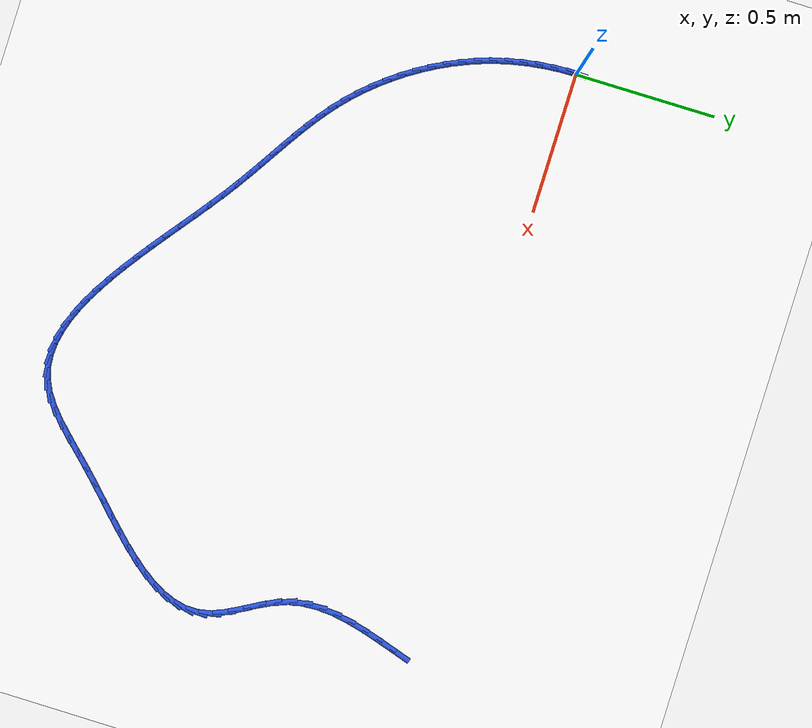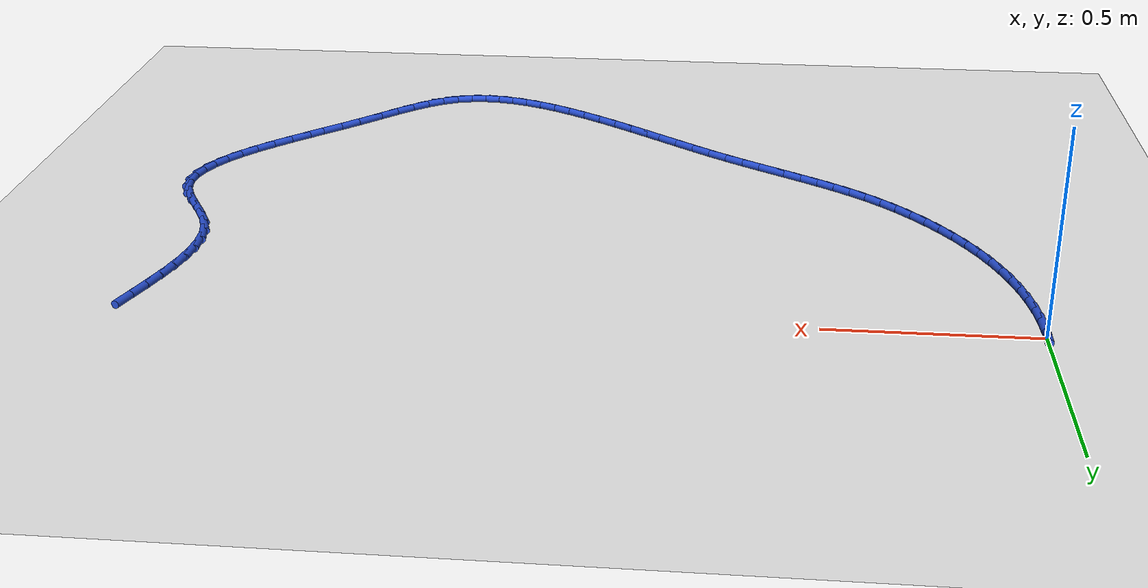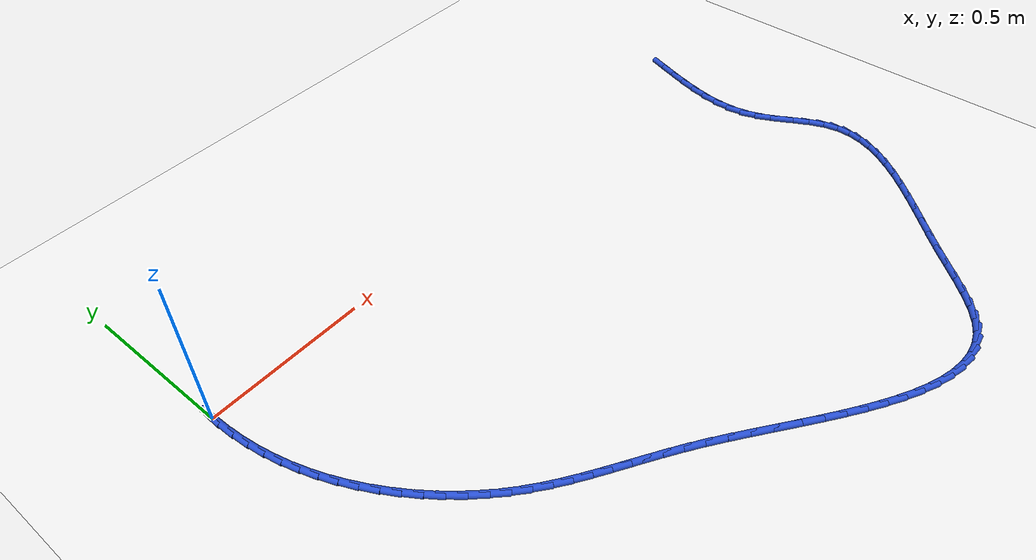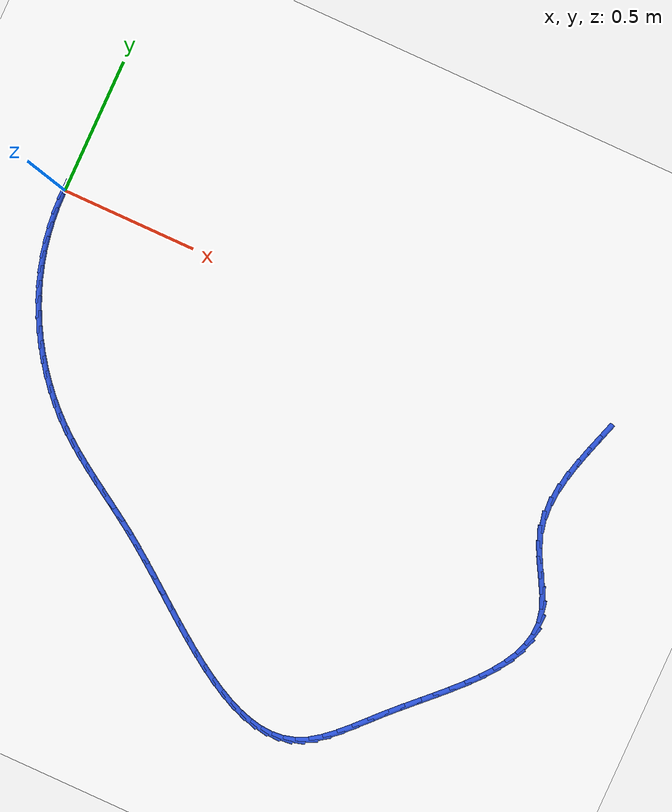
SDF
<sdf version="1.6">
 <world name="default">
  <model name="ground_plane">
   <static>1</static>
   <link name="link">
    <collision name="collision">
     <geometry><plane><normal>0 0 1</normal><size>100 100</size></plane></geometry>
     <surface><friction><ode><mu>100</mu><mu2>50</mu2></ode></friction></surface>
    </collision>
    <visual name="visual">
     <cast_shadows>0</cast_shadows>
     <geometry><plane><normal>0 0 1</normal><size>100 100</size></plane></geometry>
     <material>
      <script><uri>file://media/materials/scripts/gazebo.material</uri><name>Gazebo/WhiteGlow</name></script>
     </material>
    </visual>
   </link>
  </model>
  <model name="line">
   <link name="link_0">
    <pose>2.949029909160572e-17 -4.163336342344337e-17 0.01 0 1.57 1.544740672575645</pose>
    <collision name="collision">
     <geometry><cylinder><radius>0.01</radius><length>0.08</length></cylinder></geometry>
    </collision>
    <visual name="visual">
     <material>
      <script><name>Gazebo/Blue</name><uri>file://media/materials/scripts/gazebo.material</uri></script>
     </material>
     <geometry><cylinder><radius>0.01</radius><length>0.08</length></cylinder></geometry>
    </visual>
   </link>
   <link name="link_76">
    <pose>2.096826235157893 0.011627225582107145 0.01 0 1.57 1.2632644213254685</pose>
    <collision name="collision">
     <geometry><cylinder><radius>0.01</radius><length>0.08</length></cylinder></geometry>
    </collision>
    <visual name="visual">
     <material>
      <script><name>Gazebo/Blue</name><uri>file://media/materials/scripts/gazebo.material</uri></script>
     </material>
     <geometry><cylinder><radius>0.01</radius><length>0.08</length></cylinder></geometry>
    </visual>
   </link>
   <link name="link_77">
    <pose>2.079566126609295 -0.0427167834120716 0.01 0 1.57 1.2718921500244282</pose>
    <collision name="collision">
     <geometry><cylinder><radius>0.01</radius><length>0.08</length></cylinder></geometry>
    </collision>
    <visual name="visual">
     <material>
      <script><name>Gazebo/Blue</name><uri>file://media/materials/scripts/gazebo.material</uri></script>
     </material>
     <geometry><cylinder><radius>0.01</radius><length>0.08</length></cylinder></geometry>
    </visual>
   </link>
   <link name="link_78">
    <pose>2.062771534069714 -0.09722061912857322 0.01 0 1.57 1.299983507390627</pose>
    <collision name="collision">
     <geometry><cylinder><radius>0.01</radius><length>0.08</length></cylinder></geometry>
    </collision>
    <visual name="visual">
     <material>
      <script><name>Gazebo/Blue</name><uri>file://media/materials/scripts/gazebo.material</uri></script>
     </material>
     <geometry><cylinder><radius>0.01</radius><length>0.08</length></cylinder></geometry>
    </visual>
   </link>
   <link name="link_79">
    <pose>2.047652586593815 -0.15167713233504038 0.01 0 1.57 1.3488197064102432</pose>
    <collision name="collision">
     <geometry><cylinder><radius>0.01</radius><length>0.08</length></cylinder></geometry>
    </collision>
    <visual name="visual">
     <material>
      <script><name>Gazebo/Blue</name><uri>file://media/materials/scripts/gazebo.material</uri></script>
     </material>
     <geometry><cylinder><radius>0.01</radius><length>0.08</length></cylinder></geometry>
    </visual>
   </link>
   <link name="link_80">
    <pose>2.0354194132362644 -0.2058791737991122 0.01 0 1.57 1.4205198133109653</pose>
    <collision name="collision">
     <geometry><cylinder><radius>0.01</radius><length>0.08</length></cylinder></geometry>
    </collision>
    <visual name="visual">
     <material>
      <script><name>Gazebo/Blue</name><uri>file://media/materials/scripts/gazebo.material</uri></script>
     </material>
     <geometry><cylinder><radius>0.01</radius><length>0.08</length></cylinder></geometry>
    </visual>
   </link>
   <link name="link_81">
    <pose>2.0272821430517283 -0.2596195942884313 0.01 0 1.57 1.517499384583761</pose>
    <collision name="collision">
     <geometry><cylinder><radius>0.01</radius><length>0.08</length></cylinder></geometry>
    </collision>
    <visual name="visual">
     <material>
      <script><name>Gazebo/Blue</name><uri>file://media/materials/scripts/gazebo.material</uri></script>
     </material>
     <geometry><cylinder><radius>0.01</radius><length>0.08</length></cylinder></geometry>
    </visual>
   </link>
   <link name="link_82">
    <pose>2.0244509050948722 -0.31269124457063774 0.01 0 1.57 -1.5003150920802395</pose>
    <collision name="collision">
     <geometry><cylinder><radius>0.01</radius><length>0.08</length></cylinder></geometry>
    </collision>
    <visual name="visual">
     <material>
      <script><name>Gazebo/Blue</name><uri>file://media/materials/scripts/gazebo.material</uri></script>
     </material>
     <geometry><cylinder><radius>0.01</radius><length>0.08</length></cylinder></geometry>
    </visual>
   </link>
   <link name="link_83">
    <pose>2.0281358284203623 -0.3648869754133713 0.01 0 1.57 -1.3511423713404072</pose>
    <collision name="collision">
     <geometry><cylinder><radius>0.01</radius><length>0.08</length></cylinder></geometry>
    </collision>
    <visual name="visual">
     <material>
      <script><name>Gazebo/Blue</name><uri>file://media/materials/scripts/gazebo.material</uri></script>
     </material>
     <geometry><cylinder><radius>0.01</radius><length>0.08</length></cylinder></geometry>
    </visual>
   </link>
   <link name="link_84">
    <pose>2.0395470420828645 -0.41599963758427483 0.01 0 1.57 -1.1935699691708919</pose>
    <collision name="collision">
     <geometry><cylinder><radius>0.01</radius><length>0.08</length></cylinder></geometry>
    </collision>
    <visual name="visual">
     <material>
      <script><name>Gazebo/Blue</name><uri>file://media/materials/scripts/gazebo.material</uri></script>
     </material>
     <geometry><cylinder><radius>0.01</radius><length>0.08</length></cylinder></geometry>
    </visual>
   </link>
   <link name="link_85">
    <pose>2.059304239576534 -0.4658663464523599 0.01 0 1.57 -1.090651678037014</pose>
    <collision name="collision">
     <geometry><cylinder><radius>0.01</radius><length>0.08</length></cylinder></geometry>
    </collision>
    <visual name="visual">
     <material>
      <script><name>Gazebo/Blue</name><uri>file://media/materials/scripts/gazebo.material</uri></script>
     </material>
     <geometry><cylinder><radius>0.01</radius><length>0.08</length></cylinder></geometry>
    </visual>
   </link>
   <link name="link_86">
    <pose>2.084671844546415 -0.5145757599635162 0.01 0 1.57 -1.0550559214420145</pose>
    <collision name="collision">
     <geometry><cylinder><radius>0.01</radius><length>0.08</length></cylinder></geometry>
    </collision>
    <visual name="visual">
     <material>
      <script><name>Gazebo/Blue</name><uri>file://media/materials/scripts/gazebo.material</uri></script>
     </material>
     <geometry><cylinder><radius>0.01</radius><length>0.08</length></cylinder></geometry>
    </visual>
   </link>
   <link name="link_87">
    <pose>2.111730638689737 -0.5623052729936062 0.01 0 1.57 -1.0841357682479205</pose>
    <collision name="collision">
     <geometry><cylinder><radius>0.01</radius><length>0.08</length></cylinder></geometry>
    </collision>
    <visual name="visual">
     <material>
      <script><name>Gazebo/Blue</name><uri>file://media/materials/scripts/gazebo.material</uri></script>
     </material>
     <geometry><cylinder><radius>0.01</radius><length>0.08</length></cylinder></geometry>
    </visual>
   </link>
   <link name="link_88">
    <pose>2.136560064068666 -0.6092323808501332 0.01 0 1.57 -1.187340215090316</pose>
    <collision name="collision">
     <geometry><cylinder><radius>0.01</radius><length>0.08</length></cylinder></geometry>
    </collision>
    <visual name="visual">
     <material>
      <script><name>Gazebo/Blue</name><uri>file://media/materials/scripts/gazebo.material</uri></script>
     </material>
     <geometry><cylinder><radius>0.01</radius><length>0.08</length></cylinder></geometry>
    </visual>
   </link>
   <link name="link_89">
    <pose>2.155239562745373 -0.6555345788406024 0.01 0 1.57 -1.3775803240059434</pose>
    <collision name="collision">
     <geometry><cylinder><radius>0.01</radius><length>0.08</length></cylinder></geometry>
    </collision>
    <visual name="visual">
     <material>
      <script><name>Gazebo/Blue</name><uri>file://media/materials/scripts/gazebo.material</uri></script>
     </material>
     <geometry><cylinder><radius>0.01</radius><length>0.08</length></cylinder></geometry>
    </visual>
   </link>
   <link name="link_90">
    <pose>2.164209354869996 -0.7013790836373275 0.01 0 1.57 1.543804242396875</pose>
    <collision name="collision">
     <geometry><cylinder><radius>0.01</radius><length>0.08</length></cylinder></geometry>
    </collision>
    <visual name="visual">
     <material>
      <script><name>Gazebo/Blue</name><uri>file://media/materials/scripts/gazebo.material</uri></script>
     </material>
     <geometry><cylinder><radius>0.01</radius><length>0.08</length></cylinder></geometry>
    </visual>
   </link>
   <link name="link_91">
    <pose>2.1629818210845047 -0.7468455854857358 0.01 0 1.57 1.345138724814262</pose>
    <collision name="collision">
     <geometry><cylinder><radius>0.01</radius><length>0.08</length></cylinder></geometry>
    </collision>
    <visual name="visual">
     <material>
      <script><name>Gazebo/Blue</name><uri>file://media/materials/scripts/gazebo.material</uri></script>
     </material>
     <geometry><cylinder><radius>0.01</radius><length>0.08</length></cylinder></geometry>
    </visual>
   </link>
   <link name="link_92">
    <pose>2.1526228322086887 -0.7919695154055973 0.01 0 1.57 1.1809769895769164</pose>
    <collision name="collision">
     <geometry><cylinder><radius>0.01</radius><length>0.08</length></cylinder></geometry>
    </collision>
    <visual name="visual">
     <material>
      <script><name>Gazebo/Blue</name><uri>file://media/materials/scripts/gazebo.material</uri></script>
     </material>
     <geometry><cylinder><radius>0.01</radius><length>0.08</length></cylinder></geometry>
    </visual>
   </link>
   <link name="link_93">
    <pose>2.134210275553139 -0.8367859620646102 0.01 0 1.57 1.052759528268384</pose>
    <collision name="collision">
     <geometry><cylinder><radius>0.01</radius><length>0.08</length></cylinder></geometry>
    </collision>
    <visual name="visual">
     <material>
      <script><name>Gazebo/Blue</name><uri>file://media/materials/scripts/gazebo.material</uri></script>
     </material>
     <geometry><cylinder><radius>0.01</radius><length>0.08</length></cylinder></geometry>
    </visual>
   </link>
   <link name="link_94">
    <pose>2.1088220384284453 -0.8813300141304751 0.01 0 1.57 0.9559725087020061</pose>
    <collision name="collision">
     <geometry><cylinder><radius>0.01</radius><length>0.08</length></cylinder></geometry>
    </collision>
    <visual name="visual">
     <material>
      <script><name>Gazebo/Blue</name><uri>file://media/materials/scripts/gazebo.material</uri></script>
     </material>
     <geometry><cylinder><radius>0.01</radius><length>0.08</length></cylinder></geometry>
    </visual>
   </link>
   <link name="link_95">
    <pose>2.077536008145197 -0.9256367602708901 0.01 0 1.57 0.884789644434725</pose>
    <collision name="collision">
     <geometry><cylinder><radius>0.01</radius><length>0.08</length></cylinder></geometry>
    </collision>
    <visual name="visual">
     <material>
      <script><name>Gazebo/Blue</name><uri>file://media/materials/scripts/gazebo.material</uri></script>
     </material>
     <geometry><cylinder><radius>0.01</radius><length>0.08</length></cylinder></geometry>
    </visual>
   </link>
   <link name="link_96">
    <pose>2.0414300720139833 -0.9697412891535534 0.01 0 1.57 0.8341680571267941</pose>
    <collision name="collision">
     <geometry><cylinder><radius>0.01</radius><length>0.08</length></cylinder></geometry>
    </collision>
    <visual name="visual">
     <material>
      <script><name>Gazebo/Blue</name><uri>file://media/materials/scripts/gazebo.material</uri></script>
     </material>
     <geometry><cylinder><radius>0.01</radius><length>0.08</length></cylinder></geometry>
    </visual>
   </link>
   <link name="link_97">
    <pose>2.0015821173453943 -1.0136786894461662 0.01 0 1.57 0.8003798127740122</pose>
    <collision name="collision">
     <geometry><cylinder><radius>0.01</radius><length>0.08</length></cylinder></geometry>
    </collision>
    <visual name="visual">
     <material>
      <script><name>Gazebo/Blue</name><uri>file://media/materials/scripts/gazebo.material</uri></script>
     </material>
     <geometry><cylinder><radius>0.01</radius><length>0.08</length></cylinder></geometry>
    </visual>
   </link>
   <link name="link_98">
    <pose>1.9590700314500213 -1.057484049816426 0.01 0 1.57 0.7809575232172341</pose>
    <collision name="collision">
     <geometry><cylinder><radius>0.01</radius><length>0.08</length></cylinder></geometry>
    </collision>
    <visual name="visual">
     <material>
      <script><name>Gazebo/Blue</name><uri>file://media/materials/scripts/gazebo.material</uri></script>
     </material>
     <geometry><cylinder><radius>0.01</radius><length>0.08</length></cylinder></geometry>
    </visual>
   </link>
   <link name="link_99">
    <pose>1.9149717016384515 -1.101192458932033 0.01 0 1.57 0.7745192190437981</pose>
    <collision name="collision">
     <geometry><cylinder><radius>0.01</radius><length>0.08</length></cylinder></geometry>
    </collision>
    <visual name="visual">
     <material>
      <script><name>Gazebo/Blue</name><uri>file://media/materials/scripts/gazebo.material</uri></script>
     </material>
     <geometry><cylinder><radius>0.01</radius><length>0.08</length></cylinder></geometry>
    </visual>
   </link>
   <link name="link_100">
    <pose>1.870365015221276 -1.1448390054606858 0.01 0 1.57 0.7806366464646564</pose>
    <collision name="collision">
     <geometry><cylinder><radius>0.01</radius><length>0.08</length></cylinder></geometry>
    </collision>
    <visual name="visual">
     <material>
      <script><name>Gazebo/Blue</name><uri>file://media/materials/scripts/gazebo.material</uri></script>
     </material>
     <geometry><cylinder><radius>0.01</radius><length>0.08</length></cylinder></geometry>
    </visual>
   </link>
   <link name="link_101">
    <pose>1.826327859509085 -1.188458778070083 0.01 0 1.57 0.7992303116611837</pose>
    <collision name="collision">
     <geometry><cylinder><radius>0.01</radius><length>0.08</length></cylinder></geometry>
    </collision>
    <visual name="visual">
     <material>
      <script><name>Gazebo/Blue</name><uri>file://media/materials/scripts/gazebo.material</uri></script>
     </material>
     <geometry><cylinder><radius>0.01</radius><length>0.08</length></cylinder></geometry>
    </visual>
   </link>
   <link name="link_102">
    <pose>1.7839116803177841 -1.2320649064652056 0.01 0 1.57 0.8147638490405114</pose>
    <collision name="collision">
     <geometry><cylinder><radius>0.01</radius><length>0.08</length></cylinder></geometry>
    </collision>
    <visual name="visual">
     <material>
      <script><name>Gazebo/Blue</name><uri>file://media/materials/scripts/gazebo.material</uri></script>
     </material>
     <geometry><cylinder><radius>0.01</radius><length>0.08</length></cylinder></geometry>
    </visual>
   </link>
   <link name="link_103">
    <pose>1.7433977911850975 -1.2750309458417959 0.01 0 1.57 0.8074954610320693</pose>
    <collision name="collision">
     <geometry><cylinder><radius>0.01</radius><length>0.08</length></cylinder></geometry>
    </collision>
    <visual name="visual">
     <material>
      <script><name>Gazebo/Blue</name><uri>file://media/materials/scripts/gazebo.material</uri></script>
     </material>
     <geometry><cylinder><radius>0.01</radius><length>0.08</length></cylinder></geometry>
    </visual>
   </link>
   <link name="link_104">
    <pose>1.7041949332314612 -1.3160058030574193 0.01 0 1.57 0.7730952417449066</pose>
    <collision name="collision">
     <geometry><cylinder><radius>0.01</radius><length>0.08</length></cylinder></geometry>
    </collision>
    <visual name="visual">
     <material>
      <script><name>Gazebo/Blue</name><uri>file://media/materials/scripts/gazebo.material</uri></script>
     </material>
     <geometry><cylinder><radius>0.01</radius><length>0.08</length></cylinder></geometry>
    </visual>
   </link>
   <link name="link_105">
    <pose>1.6656648178373705 -1.3535993280132055 0.01 0 1.57 0.7060112145952415</pose>
    <collision name="collision">
     <geometry><cylinder><radius>0.01</radius><length>0.08</length></cylinder></geometry>
    </collision>
    <visual name="visual">
     <material>
      <script><name>Gazebo/Blue</name><uri>file://media/materials/scripts/gazebo.material</uri></script>
     </material>
     <geometry><cylinder><radius>0.01</radius><length>0.08</length></cylinder></geometry>
    </visual>
   </link>
   <link name="link_106">
    <pose>1.6271691563833248 -1.3864213706102806 0.01 0 1.57 0.5984479238805186</pose>
    <collision name="collision">
     <geometry><cylinder><radius>0.01</radius><length>0.08</length></cylinder></geometry>
    </collision>
    <visual name="visual">
     <material>
      <script><name>Gazebo/Blue</name><uri>file://media/materials/scripts/gazebo.material</uri></script>
     </material>
     <geometry><cylinder><radius>0.01</radius><length>0.08</length></cylinder></geometry>
    </visual>
   </link>
   <link name="link_107">
    <pose>1.588069660249821 -1.413081780749776 0.01 0 1.57 0.44296769788426654</pose>
    <collision name="collision">
     <geometry><cylinder><radius>0.01</radius><length>0.08</length></cylinder></geometry>
    </collision>
    <visual name="visual">
     <material>
      <script><name>Gazebo/Blue</name><uri>file://media/materials/scripts/gazebo.material</uri></script>
     </material>
     <geometry><cylinder><radius>0.01</radius><length>0.08</length></cylinder></geometry>
    </visual>
   </link>
   <link name="link_108">
    <pose>1.5477377829024004 -1.4322156691035743 0.01 0 1.57 0.2592997291313218</pose>
    <collision name="collision">
     <geometry><cylinder><radius>0.01</radius><length>0.08</length></cylinder></geometry>
    </collision>
    <visual name="visual">
     <material>
      <script><name>Gazebo/Blue</name><uri>file://media/materials/scripts/gazebo.material</uri></script>
     </material>
     <geometry><cylinder><radius>0.01</radius><length>0.08</length></cylinder></geometry>
    </visual>
   </link>
   <link name="link_109">
    <pose>1.5058773821378582 -1.4433200552236123 0.01 0 1.57 0.08360279911161665</pose>
    <collision name="collision">
     <geometry><cylinder><radius>0.01</radius><length>0.08</length></cylinder></geometry>
    </collision>
    <visual name="visual">
     <material>
      <script><name>Gazebo/Blue</name><uri>file://media/materials/scripts/gazebo.material</uri></script>
     </material>
     <geometry><cylinder><radius>0.01</radius><length>0.08</length></cylinder></geometry>
    </visual>
   </link>
   <link name="link_110">
    <pose>1.4625990861339795 -1.4469466952297874 0.01 0 1.57 -0.07247104629876898</pose>
    <collision name="collision">
     <geometry><cylinder><radius>0.01</radius><length>0.08</length></cylinder></geometry>
    </collision>
    <visual name="visual">
     <material>
      <script><name>Gazebo/Blue</name><uri>file://media/materials/scripts/gazebo.material</uri></script>
     </material>
     <geometry><cylinder><radius>0.01</radius><length>0.08</length></cylinder></geometry>
    </visual>
   </link>
   <link name="link_111">
    <pose>1.4180383286724612 -1.4437116650124515 0.01 0 1.57 -0.20451812160819813</pose>
    <collision name="collision">
     <geometry><cylinder><radius>0.01</radius><length>0.08</length></cylinder></geometry>
    </collision>
    <visual name="visual">
     <material>
      <script><name>Gazebo/Blue</name><uri>file://media/materials/scripts/gazebo.material</uri></script>
     </material>
     <geometry><cylinder><radius>0.01</radius><length>0.08</length></cylinder></geometry>
    </visual>
   </link>
   <link name="link_112">
    <pose>1.3723305435349995 -1.4342310404619567 0.01 0 1.57 -0.31280530811661383</pose>
    <collision name="collision">
     <geometry><cylinder><radius>0.01</radius><length>0.08</length></cylinder></geometry>
    </collision>
    <visual name="visual">
     <material>
      <script><name>Gazebo/Blue</name><uri>file://media/materials/scripts/gazebo.material</uri></script>
     </material>
     <geometry><cylinder><radius>0.01</radius><length>0.08</length></cylinder></geometry>
    </visual>
   </link>
   <link name="link_113">
    <pose>1.3256111645032893 -1.4191208974686544 0.01 0 1.57 -0.40000916791213553</pose>
    <collision name="collision">
     <geometry><cylinder><radius>0.01</radius><length>0.08</length></cylinder></geometry>
    </collision>
    <visual name="visual">
     <material>
      <script><name>Gazebo/Blue</name><uri>file://media/materials/scripts/gazebo.material</uri></script>
     </material>
     <geometry><cylinder><radius>0.01</radius><length>0.08</length></cylinder></geometry>
    </visual>
   </link>
   <link name="link_114">
    <pose>1.2780156253590271 -1.3989973119228973 0.01 0 1.57 -0.4694699597455048</pose>
    <collision name="collision">
     <geometry><cylinder><radius>0.01</radius><length>0.08</length></cylinder></geometry>
    </collision>
    <visual name="visual">
     <material>
      <script><name>Gazebo/Blue</name><uri>file://media/materials/scripts/gazebo.material</uri></script>
     </material>
     <geometry><cylinder><radius>0.01</radius><length>0.08</length></cylinder></geometry>
    </visual>
   </link>
   <link name="link_115">
    <pose>1.229679359883908 -1.374476359715037 0.01 0 1.57 -0.5243006745371438</pose>
    <collision name="collision">
     <geometry><cylinder><radius>0.01</radius><length>0.08</length></cylinder></geometry>
    </collision>
    <visual name="visual">
     <material>
      <script><name>Gazebo/Blue</name><uri>file://media/materials/scripts/gazebo.material</uri></script>
     </material>
     <geometry><cylinder><radius>0.01</radius><length>0.08</length></cylinder></geometry>
    </visual>
   </link>
   <link name="link_116">
    <pose>1.1807378018596277 -1.3461741167354246 0.01 0 1.57 -0.5670723959434358</pose>
    <collision name="collision">
     <geometry><cylinder><radius>0.01</radius><length>0.08</length></cylinder></geometry>
    </collision>
    <visual name="visual">
     <material>
      <script><name>Gazebo/Blue</name><uri>file://media/materials/scripts/gazebo.material</uri></script>
     </material>
     <geometry><cylinder><radius>0.01</radius><length>0.08</length></cylinder></geometry>
    </visual>
   </link>
   <link name="link_117">
    <pose>1.1313263850678836 -1.3147066588744132 0.01 0 1.57 -0.5997758826080987</pose>
    <collision name="collision">
     <geometry><cylinder><radius>0.01</radius><length>0.08</length></cylinder></geometry>
    </collision>
    <visual name="visual">
     <material>
      <script><name>Gazebo/Blue</name><uri>file://media/materials/scripts/gazebo.material</uri></script>
     </material>
     <geometry><cylinder><radius>0.01</radius><length>0.08</length></cylinder></geometry>
    </visual>
   </link>
   <link name="link_118">
    <pose>1.0815805432903696 -1.2806900620223542 0.01 0 1.57 -0.623883002974797</pose>
    <collision name="collision">
     <geometry><cylinder><radius>0.01</radius><length>0.08</length></cylinder></geometry>
    </collision>
    <visual name="visual">
     <material>
      <script><name>Gazebo/Blue</name><uri>file://media/materials/scripts/gazebo.material</uri></script>
     </material>
     <geometry><cylinder><radius>0.01</radius><length>0.08</length></cylinder></geometry>
    </visual>
   </link>
   <link name="link_119">
    <pose>1.031635710308783 -1.2447404020696 0.01 0 1.57 -0.6404270980453519</pose>
    <collision name="collision">
     <geometry><cylinder><radius>0.01</radius><length>0.08</length></cylinder></geometry>
    </collision>
    <visual name="visual">
     <material>
      <script><name>Gazebo/Blue</name><uri>file://media/materials/scripts/gazebo.material</uri></script>
     </material>
     <geometry><cylinder><radius>0.01</radius><length>0.08</length></cylinder></geometry>
    </visual>
   </link>
   <link name="link_120">
    <pose>0.9816273199048182 -1.2074737549065018 0.01 0 1.57 -0.6500710768530287</pose>
    <collision name="collision">
     <geometry><cylinder><radius>0.01</radius><length>0.08</length></cylinder></geometry>
    </collision>
    <visual name="visual">
     <material>
      <script><name>Gazebo/Blue</name><uri>file://media/materials/scripts/gazebo.material</uri></script>
     </material>
     <geometry><cylinder><radius>0.01</radius><length>0.08</length></cylinder></geometry>
    </visual>
   </link>
   <link name="link_121">
    <pose>0.9316908058601716 -1.169506196423411 0.01 0 1.57 -0.6531533639050642</pose>
    <collision name="collision">
     <geometry><cylinder><radius>0.01</radius><length>0.08</length></cylinder></geometry>
    </collision>
    <visual name="visual">
     <material>
      <script><name>Gazebo/Blue</name><uri>file://media/materials/scripts/gazebo.material</uri></script>
     </material>
     <geometry><cylinder><radius>0.01</radius><length>0.08</length></cylinder></geometry>
    </visual>
   </link>
   <link name="link_122">
    <pose>0.8819616019565397 -1.1314538025106815 0.01 0 1.57 -0.6497092719468541</pose>
    <collision name="collision">
     <geometry><cylinder><radius>0.01</radius><length>0.08</length></cylinder></geometry>
    </collision>
    <visual name="visual">
     <material>
      <script><name>Gazebo/Blue</name><uri>file://media/materials/scripts/gazebo.material</uri></script>
     </material>
     <geometry><cylinder><radius>0.01</radius><length>0.08</length></cylinder></geometry>
    </visual>
   </link>
   <link name="link_123">
    <pose>0.8325751419756172 -1.0939326490586634 0.01 0 1.57 -0.6394667428076043</pose>
    <collision name="collision">
     <geometry><cylinder><radius>0.01</radius><length>0.08</length></cylinder></geometry>
    </collision>
    <visual name="visual">
     <material>
      <script><name>Gazebo/Blue</name><uri>file://media/materials/scripts/gazebo.material</uri></script>
     </material>
     <geometry><cylinder><radius>0.01</radius><length>0.08</length></cylinder></geometry>
    </visual>
   </link>
   <link name="link_124">
    <pose>0.7836668596991002 -1.0575588119577093 0.01 0 1.57 -0.6218142209982805</pose>
    <collision name="collision">
     <geometry><cylinder><radius>0.01</radius><length>0.08</length></cylinder></geometry>
    </collision>
    <visual name="visual">
     <material>
      <script><name>Gazebo/Blue</name><uri>file://media/materials/scripts/gazebo.material</uri></script>
     </material>
     <geometry><cylinder><radius>0.01</radius><length>0.08</length></cylinder></geometry>
    </visual>
   </link>
   <link name="link_125">
    <pose>0.7353721889086856 -1.0229483670981714 0.01 0 1.57 -0.5980511303076634</pose>
    <collision name="collision">
     <geometry><cylinder><radius>0.01</radius><length>0.08</length></cylinder></geometry>
    </collision>
    <visual name="visual">
     <material>
      <script><name>Gazebo/Blue</name><uri>file://media/materials/scripts/gazebo.material</uri></script>
     </material>
     <geometry><cylinder><radius>0.01</radius><length>0.08</length></cylinder></geometry>
    </visual>
   </link>
   <link name="link_126">
    <pose>0.6878160186112414 -0.9905493189249766 0.01 0 1.57 -0.5783670379854693</pose>
    <collision name="collision">
     <geometry><cylinder><radius>0.01</radius><length>0.08</length></cylinder></geometry>
    </collision>
    <visual name="visual">
     <material>
      <script><name>Gazebo/Blue</name><uri>file://media/materials/scripts/gazebo.material</uri></script>
     </material>
     <geometry><cylinder><radius>0.01</radius><length>0.08</length></cylinder></geometry>
    </visual>
   </link>
   <link name="link_127">
    <pose>0.641074622764864 -0.9600348045528576 0.01 0 1.57 -0.5666298669817291</pose>
    <collision name="collision">
     <geometry><cylinder><radius>0.01</radius><length>0.08</length></cylinder></geometry>
    </collision>
    <visual name="visual">
     <material>
      <script><name>Gazebo/Blue</name><uri>file://media/materials/scripts/gazebo.material</uri></script>
     </material>
     <geometry><cylinder><radius>0.01</radius><length>0.08</length></cylinder></geometry>
    </visual>
   </link>
   <link name="link_128">
    <pose>0.595210274396729 -0.9308548025431115 0.01 0 1.57 -0.5636635304741968</pose>
    <collision name="collision">
     <geometry><cylinder><radius>0.01</radius><length>0.08</length></cylinder></geometry>
    </collision>
    <visual name="visual">
     <material>
      <script><name>Gazebo/Blue</name><uri>file://media/materials/scripts/gazebo.material</uri></script>
     </material>
     <geometry><cylinder><radius>0.01</radius><length>0.08</length></cylinder></geometry>
    </visual>
   </link>
   <link name="link_129">
    <pose>0.5502852452456826 -0.902459270922508 0.01 0 1.57 -0.5701219972980517</pose>
    <collision name="collision">
     <geometry><cylinder><radius>0.01</radius><length>0.08</length></cylinder></geometry>
    </collision>
    <visual name="visual">
     <material>
      <script><name>Gazebo/Blue</name><uri>file://media/materials/scripts/gazebo.material</uri></script>
     </material>
     <geometry><cylinder><radius>0.01</radius><length>0.08</length></cylinder></geometry>
    </visual>
   </link>
   <link name="link_130">
    <pose>0.5063618070505699 -0.8742981677178175 0.01 0 1.57 -0.5864449195273832</pose>
    <collision name="collision">
     <geometry><cylinder><radius>0.01</radius><length>0.08</length></cylinder></geometry>
    </collision>
    <visual name="visual">
     <material>
      <script><name>Gazebo/Blue</name><uri>file://media/materials/scripts/gazebo.material</uri></script>
     </material>
     <geometry><cylinder><radius>0.01</radius><length>0.08</length></cylinder></geometry>
    </visual>
   </link>
   <link name="link_131">
    <pose>0.46350223155023446 -0.8458214509558083 0.01 0 1.57 -0.6127968964294166</pose>
    <collision name="collision">
     <geometry><cylinder><radius>0.01</radius><length>0.08</length></cylinder></geometry>
    </collision>
    <visual name="visual">
     <material>
      <script><name>Gazebo/Blue</name><uri>file://media/materials/scripts/gazebo.material</uri></script>
     </material>
     <geometry><cylinder><radius>0.01</radius><length>0.08</length></cylinder></geometry>
    </visual>
   </link>
   <link name="link_132">
    <pose>0.4217687904835223 -0.8164790786632505 0.01 0 1.57 -0.6489919187052751</pose>
    <collision name="collision">
     <geometry><cylinder><radius>0.01</radius><length>0.08</length></cylinder></geometry>
    </collision>
    <visual name="visual">
     <material>
      <script><name>Gazebo/Blue</name><uri>file://media/materials/scripts/gazebo.material</uri></script>
     </material>
     <geometry><cylinder><radius>0.01</radius><length>0.08</length></cylinder></geometry>
    </visual>
   </link>
   <link name="link_133">
    <pose>0.381223755589277 -0.7857210088669129 0.01 0 1.57 -0.6944154568386302</pose>
    <collision name="collision">
     <geometry><cylinder><radius>0.01</radius><length>0.08</length></cylinder></geometry>
    </collision>
    <visual name="visual">
     <material>
      <script><name>Gazebo/Blue</name><uri>file://media/materials/scripts/gazebo.material</uri></script>
     </material>
     <geometry><cylinder><radius>0.01</radius><length>0.08</length></cylinder></geometry>
    </visual>
   </link>
   <link name="link_134">
    <pose>0.34192939860634414 -0.7529971995935651 0.01 0 1.57 -0.7474073535588482</pose>
    <collision name="collision">
     <geometry><cylinder><radius>0.01</radius><length>0.08</length></cylinder></geometry>
    </collision>
    <visual name="visual">
     <material>
      <script><name>Gazebo/Blue</name><uri>file://media/materials/scripts/gazebo.material</uri></script>
     </material>
     <geometry><cylinder><radius>0.01</radius><length>0.08</length></cylinder></geometry>
    </visual>
   </link>
   <link name="link_135">
    <pose>0.3039555412493412 -0.7178043430216946 0.01 0 1.57 -0.801489066008566</pose>
    <collision name="collision">
     <geometry><cylinder><radius>0.01</radius><length>0.08</length></cylinder></geometry>
    </collision>
    <visual name="visual">
     <material>
      <script><name>Gazebo/Blue</name><uri>file://media/materials/scripts/gazebo.material</uri></script>
     </material>
     <geometry><cylinder><radius>0.01</radius><length>0.08</length></cylinder></geometry>
    </visual>
   </link>
   <link name="link_136">
    <pose>0.2674466557728389 -0.6801012162112763 0.01 0 1.57 -0.8538854737784621</pose>
    <collision name="collision">
     <geometry><cylinder><radius>0.01</radius><length>0.08</length></cylinder></geometry>
    </collision>
    <visual name="visual">
     <material>
      <script><name>Gazebo/Blue</name><uri>file://media/materials/scripts/gazebo.material</uri></script>
     </material>
     <geometry><cylinder><radius>0.01</radius><length>0.08</length></cylinder></geometry>
    </visual>
   </link>
   <link name="link_137">
    <pose>0.23258980030243365 -0.6401102016453358 0.01 0 1.57 -0.9051906774210527</pose>
    <collision name="collision">
     <geometry><cylinder><radius>0.01</radius><length>0.08</length></cylinder></geometry>
    </collision>
    <visual name="visual">
     <material>
      <script><name>Gazebo/Blue</name><uri>file://media/materials/scripts/gazebo.material</uri></script>
     </material>
     <geometry><cylinder><radius>0.01</radius><length>0.08</length></cylinder></geometry>
    </visual>
   </link>
   <link name="link_138">
    <pose>0.19957252958585361 -0.5980567558848464 0.01 0 1.57 -0.9560017259807914</pose>
    <collision name="collision">
     <geometry><cylinder><radius>0.01</radius><length>0.08</length></cylinder></geometry>
    </collision>
    <visual name="visual">
     <material>
      <script><name>Gazebo/Blue</name><uri>file://media/materials/scripts/gazebo.material</uri></script>
     </material>
     <geometry><cylinder><radius>0.01</radius><length>0.08</length></cylinder></geometry>
    </visual>
   </link>
   <link name="link_139">
    <pose>0.16858239837082484 -0.5541663354907785 0.01 0 1.57 -1.0068931782350785</pose>
    <collision name="collision">
     <geometry><cylinder><radius>0.01</radius><length>0.08</length></cylinder></geometry>
    </collision>
    <visual name="visual">
     <material>
      <script><name>Gazebo/Blue</name><uri>file://media/materials/scripts/gazebo.material</uri></script>
     </material>
     <geometry><cylinder><radius>0.01</radius><length>0.08</length></cylinder></geometry>
    </visual>
   </link>
   <link name="link_140">
    <pose>0.13980696140507567 -0.5086643970241057 0.01 0 1.57 -1.0584281230788346</pose>
    <collision name="collision">
     <geometry><cylinder><radius>0.01</radius><length>0.08</length></cylinder></geometry>
    </collision>
    <visual name="visual">
     <material>
      <script><name>Gazebo/Blue</name><uri>file://media/materials/scripts/gazebo.material</uri></script>
     </material>
     <geometry><cylinder><radius>0.01</radius><length>0.08</length></cylinder></geometry>
    </visual>
   </link>
   <link name="link_141">
    <pose>0.1134337734363325 -0.4617763970457982 0.01 0 1.57 -1.1111679995636539</pose>
    <collision name="collision">
     <geometry><cylinder><radius>0.01</radius><length>0.08</length></cylinder></geometry>
    </collision>
    <visual name="visual">
     <material>
      <script><name>Gazebo/Blue</name><uri>file://media/materials/scripts/gazebo.material</uri></script>
     </material>
     <geometry><cylinder><radius>0.01</radius><length>0.08</length></cylinder></geometry>
    </visual>
   </link>
   <link name="link_142">
    <pose>0.0896503892123231 -0.41372779211682925 0.01 0 1.57 -1.1654829408835679</pose>
    <collision name="collision">
     <geometry><cylinder><radius>0.01</radius><length>0.08</length></cylinder></geometry>
    </collision>
    <visual name="visual">
     <material>
      <script><name>Gazebo/Blue</name><uri>file://media/materials/scripts/gazebo.material</uri></script>
     </material>
     <geometry><cylinder><radius>0.01</radius><length>0.08</length></cylinder></geometry>
    </visual>
   </link>
   <link name="link_143">
    <pose>0.06862478707063911 -0.3647251236912367 0.01 0 1.57 -1.2204772524884433</pose>
    <collision name="collision">
     <geometry><cylinder><radius>0.01</radius><length>0.08</length></cylinder></geometry>
    </collision>
    <visual name="visual">
     <material>
      <script><name>Gazebo/Blue</name><uri>file://media/materials/scripts/gazebo.material</uri></script>
     </material>
     <geometry><cylinder><radius>0.01</radius><length>0.08</length></cylinder></geometry>
    </visual>
   </link>
   <link name="link_144">
    <pose>0.05040378249223963 -0.3148578633224085 0.01 0 1.57 -1.2755473169872766</pose>
    <collision name="collision">
     <geometry><cylinder><radius>0.01</radius><length>0.08</length></cylinder></geometry>
    </collision>
    <visual name="visual">
     <material>
      <script><name>Gazebo/Blue</name><uri>file://media/materials/scripts/gazebo.material</uri></script>
     </material>
     <geometry><cylinder><radius>0.01</radius><length>0.08</length></cylinder></geometry>
    </visual>
   </link>
   <link name="link_145">
    <pose>0.0349878922889911 -0.2641707478922219 0.01 0 1.57 -1.3304908783151923</pose>
    <collision name="collision">
     <geometry><cylinder><radius>0.01</radius><length>0.08</length></cylinder></geometry>
    </collision>
    <visual name="visual">
     <material>
      <script><name>Gazebo/Blue</name><uri>file://media/materials/scripts/gazebo.material</uri></script>
     </material>
     <geometry><cylinder><radius>0.01</radius><length>0.08</length></cylinder></geometry>
    </visual>
   </link>
   <link name="link_146">
    <pose>0.022377540549464222 -0.21270842469150686 0.01 0 1.57 -1.3851110995552816</pose>
    <collision name="collision">
     <geometry><cylinder><radius>0.01</radius><length>0.08</length></cylinder></geometry>
    </collision>
    <visual name="visual">
     <material>
      <script><name>Gazebo/Blue</name><uri>file://media/materials/scripts/gazebo.material</uri></script>
     </material>
     <geometry><cylinder><radius>0.01</radius><length>0.08</length></cylinder></geometry>
    </visual>
   </link>
   <link name="link_147">
    <pose>0.01257315136223046 -0.1605155410110955 0.01 0 1.57 -1.4392204842890133</pose>
    <collision name="collision">
     <geometry><cylinder><radius>0.01</radius><length>0.08</length></cylinder></geometry>
    </collision>
    <visual name="visual">
     <material>
      <script><name>Gazebo/Blue</name><uri>file://media/materials/scripts/gazebo.material</uri></script>
     </material>
     <geometry><cylinder><radius>0.01</radius><length>0.08</length></cylinder></geometry>
    </visual>
   </link>
   <link name="link_148">
    <pose>0.005575148815861131 -0.10763674414182026 0.01 0 1.57 -1.4926451549032083</pose>
    <collision name="collision">
     <geometry><cylinder><radius>0.01</radius><length>0.08</length></cylinder></geometry>
    </collision>
    <visual name="visual">
     <material>
      <script><name>Gazebo/Blue</name><uri>file://media/materials/scripts/gazebo.material</uri></script>
     </material>
     <geometry><cylinder><radius>0.01</radius><length>0.08</length></cylinder></geometry>
    </visual>
   </link>
   <link name="link_149">
    <pose>0.0013839569989272105 -0.054116681374510825 0.01 0 1.57 -1.5452283249158363</pose>
    <collision name="collision">
     <geometry><cylinder><radius>0.01</radius><length>0.08</length></cylinder></geometry>
    </collision>
    <visual name="visual">
     <material>
      <script><name>Gazebo/Blue</name><uri>file://media/materials/scripts/gazebo.material</uri></script>
     </material>
     <geometry><cylinder><radius>0.01</radius><length>0.08</length></cylinder></geometry>
    </visual>
   </link>
   <link name="link_150">
    <pose>4.163336342344337e-17 -2.914335439641036e-16 0.01 0 1.57 1.5447598302968368</pose>
    <collision name="collision">
     <geometry><cylinder><radius>0.01</radius><length>0.08</length></cylinder></geometry>
    </collision>
    <visual name="visual">
     <material>
      <script><name>Gazebo/Blue</name><uri>file://media/materials/scripts/gazebo.material</uri></script>
     </material>
     <geometry><cylinder><radius>0.01</radius><length>0.08</length></cylinder></geometry>
    </visual>
   </link>
  </model>
 </world>
</sdf>
